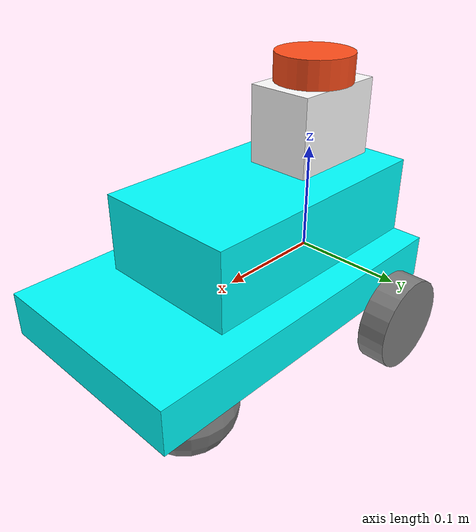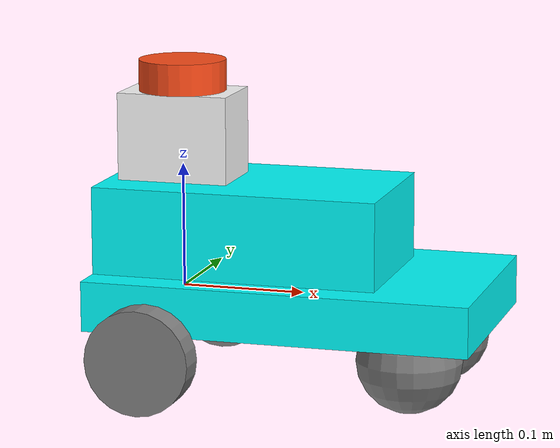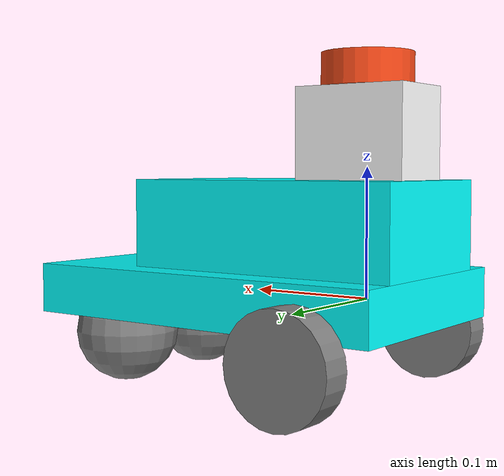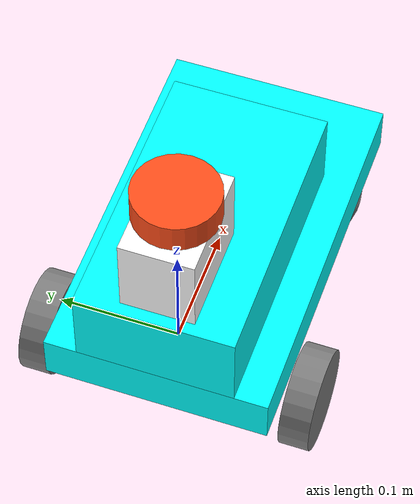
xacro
<?xml version="1.0" encoding="UTF-8"?>
<robot name="raros_bot" xmlns:xacro="http://www.ros.org/wiki/xacro">
  <xacro:include filename="materials.xacro"/>
  <xacro:include filename="inertial_macros.xacro"/>
  <xacro:include filename="gazebo_control.xacro"/>
  <xacro:include filename="wheel.xacro"/>
  <xacro:include filename="core.xacro"/>
  <xacro:include filename="lidar.xacro"/>
</robot>

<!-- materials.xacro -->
<robot xmlns:xacro="http://www.ros.org/wiki/xacro">
  <material name="white">
    <color rgba="1 1 1 1"/>
  </material>

  <material name="orange">
    <color rgba="1 0.3 0.1 1"/>
  </material>

  <material name="blue">
    <color rgba="0.2 0.2 1 1"/>
  </material>

  <material name="cyan">
    <color rgba="0 1.0 1.0 1.0"/>
  </material>

  <material name="black">
    <color rgba="0 0 0 1"/>
  </material>

  <material name="red">
    <color rgba="1 0 0 1"/>
  </material>

  <material name="gray">
    <color rgba="0.5 0.5 0.5 1.0"/>
  </material>
</robot>

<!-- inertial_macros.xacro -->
<!--Source: https://navigation.ros.org/setup_guides/urdf/setup_urdf.html-->
<robot xmlns:xacro="http://www.ros.org/wiki/xacro">

  <!-- Define intertial property macros  -->
  <xacro:macro name="box_inertia" params="m w h d">
    <inertial>
      <origin xyz="0 0 0" rpy="${pi/2} 0 ${pi/2}"/>
      <mass value="${m}"/>
      <inertia ixx="${(m/12) * (h*h + d*d)}"
               ixy="0.0"
               ixz="0.0"
               iyy="${(m/12) * (w*w + d*d)}"
               iyz="0.0"
               izz="${(m/12) * (w*w + h*h)}"/>
    </inertial>
  </xacro:macro>

  <xacro:macro name="cylinder_inertia" params="m r h">
    <inertial>
      <origin xyz="0 0 0" rpy="${pi/2} 0 0"/>
      <mass value="${m}"/>
      <inertia ixx="${(m/12) * (3*r*r + h*h)}"
               ixy="0"
               ixz="0"
               iyy="${(m/12) * (3*r*r + h*h)}"
               iyz="0"
               izz="${(m/2) * (r*r)}"/>
    </inertial>
  </xacro:macro>

  <xacro:macro name="sphere_inertia" params="m r">
    <inertial>
      <mass value="${m}"/>
      <inertia ixx="${(2/5) * m * (r*r)}"
               ixy="0.0"
               ixz="0.0"
               iyy="${(2/5) * m * (r*r)}"
               iyz="0.0"
               izz="${(2/5) * m * (r*r)}"/>
    </inertial>
  </xacro:macro>

</robot>

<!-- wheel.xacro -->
<robot xmlns:xacro="http://www.ros.org/wiki/xacro">
  <xacro:macro name="wheel" params="prefix y_reflect">
    <link name="${prefix}_link">
      <visual>
        <origin xyz="0 0 0" rpy="${pi/2} 0 0"/>
        <geometry>
          <cylinder radius="${wheel_radius}" length="${wheel_width}"/>
        </geometry>
        <material name="gray"/>
      </visual>
      <collision>
        <origin xyz="0 0 0" rpy="${pi/2} 0 0"/>
        <geometry>
          <cylinder radius="${wheel_radius}" length="${wheel_width}"/>
        </geometry>
      </collision>
      <xacro:cylinder_inertia m="0.5" r="${wheel_radius}" h="${wheel_width}"/>
    </link>

    <joint name="${prefix}_joint" type="continuous">
      <parent link="base_link"/>
      <child link="${prefix}_link"/>
      <origin xyz="0 ${y_reflect * (base_width / 2 + wheel_ygap + wheel_width / 2)} ${-wheel_zoff}" rpy="0 0 0"/>
      <axis xyz="0 1 0"/>
    </joint>

    <gazebo reference="${prefix}_link">
      <material>Gazebo/Gray</material>
    </gazebo>
  </xacro:macro>

  <xacro:macro name="caster_wheel" params="prefix y_reflect">
    <link name="${prefix}_link">
      <visual>
        <geometry>
          <sphere radius="${wheel_radius}"/>
        </geometry>
        <material name="gray"/>
      </visual>
      <collision>
        <origin xyz="0 0 0" rpy="0 0 0"/>
        <geometry>
          <sphere radius="${wheel_radius}"/>
        </geometry>
      </collision>
      <xacro:sphere_inertia m="0.3" r="${wheel_radius}"/>
    </link>

    <joint name="${prefix}_joint" type="fixed">
      <parent link="base_link"/>
      <child link="${prefix}_link"/>
      <origin xyz="${caster_xoff} ${y_reflect*caster_yoff} ${-wheel_zoff}" rpy="0 0 0"/>
    </joint>

    <gazebo reference="${prefix}_link">
      <material>Gazebo/Black</material>
      <mu1 value="0.001"/>
      <mu2 value="0.001"/>
    </gazebo>
  </xacro:macro>
</robot>

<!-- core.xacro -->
<robot xmlns:xacro="http://www.ros.org/wiki/xacro">

  <!-- Define robot constants -->
  <xacro:property name="base_width" value="0.185"/>
  <xacro:property name="base_length" value="0.31"/>
  <xacro:property name="base_height" value="0.04"/>

  <xacro:property name="top_width" value="0.13"/>
  <xacro:property name="top_height" value="0.07"/>
  <xacro:property name="top_length" value="0.23"/>

  <xacro:property name="wheel_radius" value="0.0420"/>
  <xacro:property name="wheel_width" value="0.025"/>
  <xacro:property name="wheel_ygap" value="0.005"/>
  <xacro:property name="wheel_zoff" value="0.035"/>
  <xacro:property name="wheel_xoff" value="0.10"/>

  <xacro:property name="caster_yoff" value="0.05"/>
  <xacro:property name="caster_xoff" value="0.2"/>

  <!-- Robot Base -->
  <link name="base_link"/>

  <!-- Robot Footprint -->
  <link name="base_footprint"/>
  <joint name="base_joint" type="fixed">
    <parent link="base_link"/>
    <child link="base_footprint"/>
    <origin xyz="0.0 0.0 ${-(wheel_radius+wheel_zoff)}" rpy="0 0 0"/>
  </joint>

  <!-- Chassis-->
  <link name="chassis_base">
    <visual>
      <geometry>
        <box size="${base_length} ${base_width} ${base_height}"/>
      </geometry>
      <material name="cyan"/>
    </visual>
    <collision>
      <geometry>
        <box size="${base_length} ${base_width} ${base_height}"/>
      </geometry>
    </collision>
    <xacro:box_inertia m="2" w="${base_width}" d="${base_length}" h="${base_height}"/>
  </link>

  <joint name="chassis_joint" type="fixed">
    <parent link="base_link"/>
    <child link="chassis_base"/>
    <origin xyz="${wheel_xoff} 0 0"/>
  </joint>

  <!-- Top Chassis-->
  <link name="chassis_top">
    <visual>
      <geometry>
        <box size="${top_length} ${top_width} ${top_height}"/>
      </geometry>
      <material name="cyan"/>
    </visual>
     <collision>
      <geometry>
        <box size="${top_length} ${top_width} ${top_height}"/>
      </geometry>
    </collision>
    <xacro:box_inertia m="0.2" w="${top_width}" d="${top_length}" h="${top_height}"/>
  </link>

  <joint name="top_joint" type="fixed">
    <parent link="chassis_base"/>
    <child link="chassis_top"/>
    <origin xyz="${top_length / 2 - base_length / 2} 0 ${base_height / 2 + top_height / 2}" rpy="0 0 0"/>
  </joint>

  <!-- Wheels -->
  <xacro:wheel prefix="drive_wheel_l" y_reflect="1"/>
  <xacro:wheel prefix="drive_wheel_r" y_reflect="-1"/>

  <!-- Caster Wheels-->
  <xacro:caster_wheel prefix="front_caster" y_reflect="1"/>
  <xacro:caster_wheel prefix="rear_caster" y_reflect="-1"/>

</robot>

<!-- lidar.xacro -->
<robot xmlns:xacro="http://www.ros.org/wiki/xacro">

  <xacro:property name="mount_width" value="0.06"/>
  <xacro:property name="mount_height" value="0.07"/>
  <xacro:property name="mount_length" value="0.09"/>

  <xacro:property name="laser_height" value="0.025"/>
  <xacro:property name="laser_radius" value="0.035"/>

  <!-- LIDAR Mount -->
  <link name="laser_mount">
    <visual>
      <geometry>
        <box size="${mount_length} ${mount_width} ${mount_height}"/>
      </geometry>
      <material name="white"/>
    </visual>
    <collision>
      <geometry>
        <box size="${mount_length} ${mount_width} ${mount_height}"/>
      </geometry>
    </collision>
    <xacro:box_inertia m="0.1" w="${mount_width}" d="${mount_length}" h="${mount_height}"/>
  </link>

  <joint name="laser_mount_joint" type="fixed">
    <parent link="chassis_top"/>
    <child link="laser_mount"/>
    <origin xyz="${-mount_width} 0 ${top_height / 2 + mount_height / 2}" rpy="0 0 0"/>
  </joint>

  <!-- LIDAR Sensor-->
  <link name="laser_frame">
    <visual>
      <geometry>
        <cylinder radius="${laser_radius}" length="${laser_height}"/>
      </geometry>
      <material name="orange"/>
    </visual>
    <collision>
      <geometry>
        <cylinder radius="${laser_radius}" length="${laser_height}"/>
      </geometry>
    </collision>
    <xacro:cylinder_inertia m="0.5" r="${laser_radius}" h="${laser_height}"/>
  </link>

  <joint name="laser_joint" type="fixed">
    <parent link="laser_mount"/>
    <child link="laser_frame"/>
    <origin xyz="0 0 ${ mount_height / 2 + laser_height / 2}" rpy="0 0 0"/>
  </joint>

  <gazebo reference="laser_frame">
    <material>Gazebo/Red</material>
    <sensor name="laser" type="ray">
      <pose>0 0 0 0 0 0</pose>
      <visualize>true</visualize>
      <update_rate>10</update_rate>
      <ray>
        <scan>
          <horizontal>
            <samples>360</samples>
            <min_angle>-3.14</min_angle>
            <max_angle>3.14</max_angle>
          </horizontal>
        </scan>
        <range>
          <min>0.3</min>
          <max>12</max>
        </range>
      </ray>
      <plugin name="laser_controller" filename="libgazebo_ros_ray_sensor.so">
        <ros>
          <argument>~/out:=scan</argument>
        </ros>
        <output_type>sensor_msgs/LaserScan</output_type>
        <frame_name>laser_frame</frame_name>
      </plugin>
    </sensor>
  </gazebo>

</robot>
